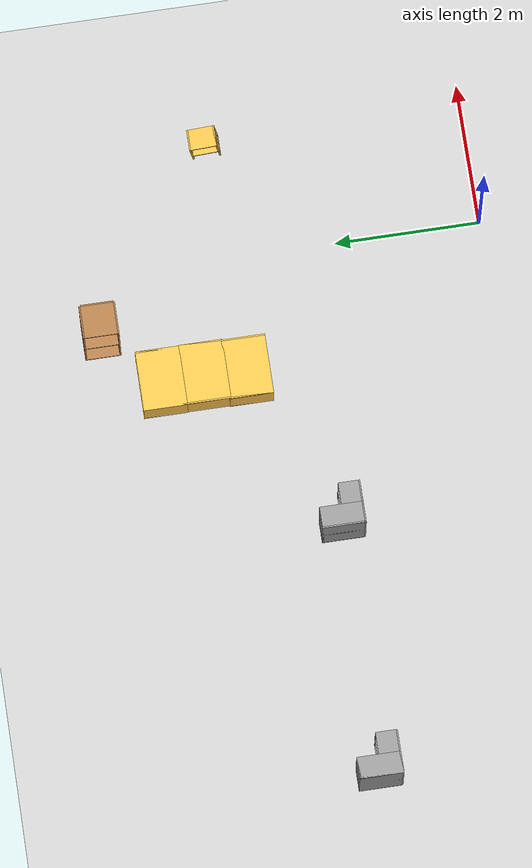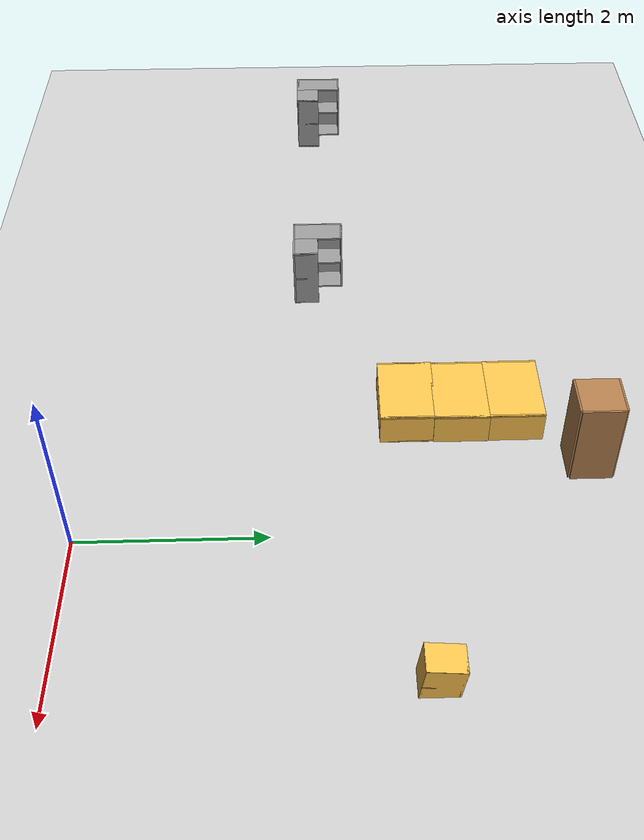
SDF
<sdf version="1.7">
 <world name="default">
  <model name="ground_plane">
   <static>1</static>
   <link name="link">
    <collision name="collision">
     <geometry><plane><normal>0 0 1</normal><size>100 100</size></plane></geometry>
     <surface><friction><ode><mu>100</mu><mu2>50</mu2></ode></friction></surface>
    </collision>
    <visual name="visual">
     <cast_shadows>0</cast_shadows>
     <geometry><plane><normal>0 0 1</normal><size>100 100</size></plane></geometry>
     <material>
      <script><uri>file://media/materials/scripts/gazebo.material</uri><name>Gazebo/Grey</name></script>
     </material>
    </visual>
   </link>
  </model>
  <model name="Wall_Cabinet_15x30">
   <pose>1.64527 3.73877 0 1.45279 -0 0</pose>
   <link name="Wall_0">
    <pose>0 0.374 0.192 0 -0 0</pose>
    <inertial>
     <mass>0.9882</mass>
     <inertia><ixx>0.0072</ixx><iyy>0.0194</iyy><izz>0.0122</izz><ixy>0</ixy><ixz>0</ixz><iyz>0</iyz></inertia>
    </inertial>
    <collision name="Wall_0_Collision"><geometry><box><size>0.296 0.02 0.384</size></box></geometry></collision>
    <visual name="Wall_0_Visual">
     <geometry><box><size>0.296 0.02 0.384</size></box></geometry>
     <material>
      <script><uri>file://media/materials/scripts/gazebo.material</uri><name>Gazebo/Grey</name></script>
      <ambient>1 0.764706 0.305882 1</ambient>
     </material>
    </visual>
   </link>
   <joint name="0_2" type="fixed">
    <pose>0 0 0.192 0 -0 0</pose>
    <parent>Wall_2</parent>
    <child>Wall_0</child>
    <axis><xyz>0 0 1</xyz><limit><lower>-1e+16</lower><upper>1e+16</upper></limit></axis>
   </joint>
   <joint name="0_4" type="fixed">
    <pose>0 0 -0.192 0 -0 0</pose>
    <parent>Wall_4</parent>
    <child>Wall_0</child>
    <axis><xyz>0 0 1</xyz><limit><lower>-1e+16</lower><upper>1e+16</upper></limit></axis>
   </joint>
   <joint name="0_15" type="fixed">
    <pose>0.148 0 0 0 -0 0</pose>
    <parent>Wall_15</parent>
    <child>Wall_0</child>
    <axis><xyz>1 0 0</xyz><limit><lower>-1e+16</lower><upper>1e+16</upper></limit></axis>
   </joint>
   <link name="Wall_11">
    <pose>0 -0.132768 0.192 0 -0 0</pose>
    <inertial>
     <mass>0.9882</mass>
     <inertia><ixx>0.0072</ixx><iyy>0.0194</iyy><izz>0.0122</izz><ixy>0</ixy><ixz>0</ixz><iyz>0</iyz></inertia>
    </inertial>
    <collision name="Wall_11_Collision"><geometry><box><size>0.296 0.02 0.384</size></box></geometry></collision>
    <visual name="Wall_11_Visual">
     <geometry><box><size>0.296 0.02 0.384</size></box></geometry>
     <material>
      <script><uri>file://media/materials/scripts/gazebo.material</uri><name>Gazebo/Grey</name></script>
      <ambient>1 0.764706 0.305882 1</ambient>
     </material>
    </visual>
   </link>
   <joint name="11_2" type="fixed">
    <pose>0 0 0.192 0 -0 0</pose>
    <parent>Wall_2</parent>
    <child>Wall_11</child>
    <axis><xyz>0 0 1</xyz><limit><lower>-1e+16</lower><upper>1e+16</upper></limit></axis>
   </joint>
   <joint name="11_4" type="fixed">
    <pose>0 0 -0.192 0 -0 0</pose>
    <parent>Wall_4</parent>
    <child>Wall_11</child>
    <axis><xyz>0 0 1</xyz><limit><lower>-1e+16</lower><upper>1e+16</upper></limit></axis>
   </joint>
   <joint name="11_15" type="fixed">
    <pose>0.148 0 0 0 -0 0</pose>
    <parent>Wall_15</parent>
    <child>Wall_11</child>
    <axis><xyz>1 0 0</xyz><limit><lower>-1e+16</lower><upper>1e+16</upper></limit></axis>
   </joint>
   <link name="Wall_15">
    <pose>0.138 0 0.19 0 -0 0</pose>
    <inertial>
     <mass>2.5241</mass>
     <inertia><ixx>0.0305</ixx><iyy>0.1229</iyy><izz>0.1532</izz><ixy>0</ixy><ixz>0</ixz><iyz>0</iyz></inertia>
    </inertial>
    <collision name="Wall_15_Collision"><geometry><box><size>0.02 0.764 0.38</size></box></geometry></collision>
    <visual name="Wall_15_Visual">
     <geometry><box><size>0.02 0.764 0.38</size></box></geometry>
     <material>
      <script><uri>file://media/materials/scripts/gazebo.material</uri><name>Gazebo/Grey</name></script>
      <ambient>1 0.764706 0.305882 1</ambient>
     </material>
    </visual>
   </link>
   <joint name="15_2" type="fixed">
    <pose>0 0 0.19 0 -0 0</pose>
    <parent>Wall_2</parent>
    <child>Wall_15</child>
    <axis><xyz>0 0 1</xyz><limit><lower>-1e+16</lower><upper>1e+16</upper></limit></axis>
   </joint>
   <joint name="15_4" type="fixed">
    <pose>0 0 -0.19 0 -0 0</pose>
    <parent>Wall_4</parent>
    <child>Wall_15</child>
    <axis><xyz>0 0 1</xyz><limit><lower>-1e+16</lower><upper>1e+16</upper></limit></axis>
   </joint>
   <link name="Wall_2">
    <pose>0 0 0.374 0 -0 0</pose>
    <inertial>
     <mass>1.9765</mass>
     <inertia><ixx>0.0145</ixx><iyy>0.1116</iyy><izz>0.0972</izz><ixy>0</ixy><ixz>0</ixz><iyz>0</iyz></inertia>
    </inertial>
    <collision name="Wall_2_Collision"><geometry><box><size>0.296 0.768 0.02</size></box></geometry></collision>
    <visual name="Wall_2_Visual">
     <geometry><box><size>0.296 0.768 0.02</size></box></geometry>
     <material>
      <script><uri>file://media/materials/scripts/gazebo.material</uri><name>Gazebo/Grey</name></script>
      <ambient>1 0.764706 0.305882 1</ambient>
     </material>
    </visual>
   </link>
   <link name="Wall_4">
    <pose>0 0 0.01 0 -0 0</pose>
    <inertial>
     <mass>1.9765</mass>
     <inertia><ixx>0.0145</ixx><iyy>0.1116</iyy><izz>0.0972</izz><ixy>0</ixy><ixz>0</ixz><iyz>0</iyz></inertia>
    </inertial>
    <collision name="Wall_4_Collision"><geometry><box><size>0.296 0.768 0.02</size></box></geometry></collision>
    <visual name="Wall_4_Visual">
     <geometry><box><size>0.296 0.768 0.02</size></box></geometry>
     <material>
      <script><uri>file://media/materials/scripts/gazebo.material</uri><name>Gazebo/Grey</name></script>
      <ambient>1 0.764706 0.305882 1</ambient>
     </material>
    </visual>
    <pose>-0.181124 0 0 0 0 -1.5708</pose>
   </link>
   <link name="Wall_6">
    <pose>0 -0.374 0.192 0 -0 0</pose>
    <inertial>
     <mass>0.9882</mass>
     <inertia><ixx>0.0072</ixx><iyy>0.0194</iyy><izz>0.0122</izz><ixy>0</ixy><ixz>0</ixz><iyz>0</iyz></inertia>
    </inertial>
    <collision name="Wall_6_Collision"><geometry><box><size>0.296 0.02 0.384</size></box></geometry></collision>
    <visual name="Wall_6_Visual">
     <geometry><box><size>0.296 0.02 0.384</size></box></geometry>
     <material>
      <script><uri>file://media/materials/scripts/gazebo.material</uri><name>Gazebo/Grey</name></script>
      <ambient>1 0.764706 0.305882 1</ambient>
     </material>
    </visual>
   </link>
   <joint name="6_2" type="fixed">
    <pose>0 0 0.192 0 -0 0</pose>
    <parent>Wall_2</parent>
    <child>Wall_6</child>
    <axis><xyz>0 0 1</xyz><limit><lower>-1e+16</lower><upper>1e+16</upper></limit></axis>
   </joint>
   <joint name="6_4" type="fixed">
    <pose>0 0 -0.192 0 -0 0</pose>
    <parent>Wall_4</parent>
    <child>Wall_6</child>
    <axis><xyz>0 0 1</xyz><limit><lower>-1e+16</lower><upper>1e+16</upper></limit></axis>
   </joint>
   <joint name="6_15" type="fixed">
    <pose>0.148 0 0 0 -0 0</pose>
    <parent>Wall_15</parent>
    <child>Wall_6</child>
    <axis><xyz>1 0 0</xyz><limit><lower>-1e+16</lower><upper>1e+16</upper></limit></axis>
   </joint>
   <link name="Wall_8">
    <pose>0 0.120833 0.192 0 -0 0</pose>
    <inertial>
     <mass>0.9882</mass>
     <inertia><ixx>0.0072</ixx><iyy>0.0194</iyy><izz>0.0122</izz><ixy>0</ixy><ixz>0</ixz><iyz>0</iyz></inertia>
    </inertial>
    <collision name="Wall_8_Collision"><geometry><box><size>0.296 0.02 0.384</size></box></geometry></collision>
    <visual name="Wall_8_Visual">
     <geometry><box><size>0.296 0.02 0.384</size></box></geometry>
     <material>
      <script><uri>file://media/materials/scripts/gazebo.material</uri><name>Gazebo/Grey</name></script>
      <ambient>1 0.764706 0.305882 1</ambient>
     </material>
    </visual>
   </link>
   <joint name="8_2" type="fixed">
    <pose>0 0 0.192 0 -0 0</pose>
    <parent>Wall_2</parent>
    <child>Wall_8</child>
    <axis><xyz>0 0 1</xyz><limit><lower>-1e+16</lower><upper>1e+16</upper></limit></axis>
   </joint>
   <joint name="8_4" type="fixed">
    <pose>0 0 -0.192 0 -0 0</pose>
    <parent>Wall_4</parent>
    <child>Wall_8</child>
    <axis><xyz>0 0 1</xyz><limit><lower>-1e+16</lower><upper>1e+16</upper></limit></axis>
   </joint>
   <joint name="8_15" type="fixed">
    <pose>0.148 0 0 0 -0 0</pose>
    <parent>Wall_15</parent>
    <child>Wall_8</child>
    <axis><xyz>1 0 0</xyz><limit><lower>-1e+16</lower><upper>1e+16</upper></limit></axis>
   </joint>
   <static>1</static>
  </model>
  <model name="Wall_Cabinet_Coin_24x30W">
   <link name="Wall_10">
    <pose>0.286 -0.148 0.384 0 -0 0</pose>
    <inertial>
     <mass>2.1259</mass>
     <inertia><ixx>0.0158</ixx><iyy>0.1202</iyy><izz>0.1046</izz><ixy>0</ixy><ixz>0</ixz><iyz>0</iyz></inertia>
    </inertial>
    <collision name="Wall_10_Collision"><geometry><box><size>0.02 0.296 0.768</size></box></geometry></collision>
    <visual name="Wall_10_Visual">
     <geometry><box><size>0.02 0.296 0.768</size></box></geometry>
     <material>
      <script><uri>file://media/materials/scripts/gazebo.material</uri><name>Gazebo/Grey</name></script>
      <ambient>1 1 1 1</ambient>
     </material>
    </visual>
   </link>
   <joint name="10_16" type="fixed">
    <pose>0 0 -0.374 0 -0 0</pose>
    <parent>Wall_16</parent>
    <child>Wall_10</child>
    <axis><xyz>1 0 0</xyz><limit><lower>-1e+16</lower><upper>1e+16</upper></limit></axis>
   </joint>
   <joint name="10_14" type="fixed">
    <parent>Wall_14</parent>
    <child>Wall_10</child>
    <axis><xyz>1 0 0</xyz><limit><lower>-1e+16</lower><upper>1e+16</upper></limit></axis>
   </joint>
   <joint name="10_12" type="fixed">
    <pose>0 0 0.374 0 -0 0</pose>
    <parent>Wall_12</parent>
    <child>Wall_10</child>
    <axis><xyz>1 0 0</xyz><limit><lower>-1e+16</lower><upper>1e+16</upper></limit></axis>
   </joint>
   <joint name="10_29" type="fixed">
    <pose>0 -0.148 0 0 -0 0</pose>
    <parent>Wall_29</parent>
    <child>Wall_10</child>
    <axis><xyz>1 0 0</xyz><limit><lower>-1e+16</lower><upper>1e+16</upper></limit></axis>
   </joint>
   <link name="Wall_12">
    <pose>0.148 -0.148 0.758 0 -0 0</pose>
    <inertial>
     <mass>0.8802</mass>
     <inertia><ixx>0.0065</ixx><iyy>0.0139</iyy><izz>0.0074</izz><ixy>0</ixy><ixz>0</ixz><iyz>0</iyz></inertia>
    </inertial>
    <collision name="Wall_12_Collision"><geometry><box><size>0.296 0.296 0.02</size></box></geometry></collision>
    <visual name="Wall_12_Visual">
     <geometry><box><size>0.296 0.296 0.02</size></box></geometry>
     <material>
      <script><uri>file://media/materials/scripts/gazebo.material</uri><name>Gazebo/Grey</name></script>
      <ambient>1 1 1 1</ambient>
     </material>
    </visual>
   </link>
   <joint name="12_29" type="fixed">
    <pose>0 -0.148 0 0 -0 0</pose>
    <parent>Wall_29</parent>
    <child>Wall_12</child>
    <axis><xyz>0 0 1</xyz><limit><lower>-1e+16</lower><upper>1e+16</upper></limit></axis>
   </joint>
   <link name="Wall_14">
    <pose>0.148 -0.148 0.384 0 -0 0</pose>
    <inertial>
     <mass>0.8802</mass>
     <inertia><ixx>0.0065</ixx><iyy>0.0139</iyy><izz>0.0074</izz><ixy>0</ixy><ixz>0</ixz><iyz>0</iyz></inertia>
    </inertial>
    <collision name="Wall_14_Collision"><geometry><box><size>0.296 0.296 0.02</size></box></geometry></collision>
    <visual name="Wall_14_Visual">
     <geometry><box><size>0.296 0.296 0.02</size></box></geometry>
     <material>
      <script><uri>file://media/materials/scripts/gazebo.material</uri><name>Gazebo/Grey</name></script>
      <ambient>1 1 1 1</ambient>
     </material>
    </visual>
   </link>
   <joint name="14_29" type="fixed">
    <pose>0 -0.148 0 0 -0 0</pose>
    <parent>Wall_29</parent>
    <child>Wall_14</child>
    <axis><xyz>0 1 0</xyz><limit><lower>-1e+16</lower><upper>1e+16</upper></limit></axis>
   </joint>
   <link name="Wall_16">
    <pose>0.148 -0.148 0.01 0 -0 0</pose>
    <inertial>
     <mass>0.8802</mass>
     <inertia><ixx>0.0065</ixx><iyy>0.0139</iyy><izz>0.0074</izz><ixy>0</ixy><ixz>0</ixz><iyz>0</iyz></inertia>
    </inertial>
    <collision name="Wall_16_Collision"><geometry><box><size>0.296 0.296 0.02</size></box></geometry></collision>
    <visual name="Wall_16_Visual">
     <geometry><box><size>0.296 0.296 0.02</size></box></geometry>
     <material>
      <script><uri>file://media/materials/scripts/gazebo.material</uri><name>Gazebo/Grey</name></script>
      <ambient>1 1 1 1</ambient>
     </material>
    </visual>
   </link>
   <joint name="16_29" type="fixed">
    <pose>0 -0.148 0 0 -0 0</pose>
    <parent>Wall_29</parent>
    <child>Wall_16</child>
    <axis><xyz>0 1 0</xyz><limit><lower>-1e+16</lower><upper>1e+16</upper></limit></axis>
   </joint>
   <link name="Wall_18">
    <pose>-0.148 0 0.01 0 -0 0</pose>
    <inertial>
     <mass>1.6525</mass>
     <inertia><ixx>0.0491</ixx><iyy>0.0613</iyy><izz>0.0123</izz><ixy>0</ixy><ixz>0</ixz><iyz>0</iyz></inertia>
    </inertial>
    <collision name="Wall_18_Collision"><geometry><box><size>0.296 0.592 0.02</size></box></geometry></collision>
    <visual name="Wall_18_Visual">
     <geometry><box><size>0.296 0.592 0.02</size></box></geometry>
     <material>
      <script><uri>file://media/materials/scripts/gazebo.material</uri><name>Gazebo/Grey</name></script>
      <ambient>1 1 1 1</ambient>
     </material>
    </visual>
   </link>
   <joint name="18_16" type="fixed">
    <pose>0.148 -0.148 0 0 -0 0</pose>
    <parent>Wall_16</parent>
    <child>Wall_18</child>
    <axis><xyz>1 0 0</xyz><limit><lower>-1e+16</lower><upper>1e+16</upper></limit></axis>
   </joint>
   <joint name="18_29" type="fixed">
    <pose>0 -0.296 0 0 -0 0</pose>
    <parent>Wall_29</parent>
    <child>Wall_18</child>
    <axis><xyz>0 1 0</xyz><limit><lower>-1e+16</lower><upper>1e+16</upper></limit></axis>
   </joint>
   <joint name="18_27" type="fixed">
    <pose>-0.148 0 0 0 -0 0</pose>
    <parent>Wall_27</parent>
    <child>Wall_18</child>
    <axis><xyz>1 0 0</xyz><limit><lower>-1e+16</lower><upper>1e+16</upper></limit></axis>
   </joint>
   <joint name="18_30" type="fixed">
    <pose>0 0.296 0 0 -0 0</pose>
    <parent>Wall_30</parent>
    <child>Wall_18</child>
    <axis><xyz>0 1 0</xyz><limit><lower>-1e+16</lower><upper>1e+16</upper></limit></axis>
   </joint>
   <link name="Wall_20">
    <pose>-0.148 0 0.384 0 -0 0</pose>
    <inertial>
     <mass>1.6525</mass>
     <inertia><ixx>0.0491</ixx><iyy>0.0613</iyy><izz>0.0123</izz><ixy>0</ixy><ixz>0</ixz><iyz>0</iyz></inertia>
    </inertial>
    <collision name="Wall_20_Collision"><geometry><box><size>0.296 0.592 0.02</size></box></geometry></collision>
    <visual name="Wall_20_Visual">
     <geometry><box><size>0.296 0.592 0.02</size></box></geometry>
     <material>
      <script><uri>file://media/materials/scripts/gazebo.material</uri><name>Gazebo/Grey</name></script>
      <ambient>1 1 1 1</ambient>
     </material>
    </visual>
   </link>
   <joint name="20_14" type="fixed">
    <pose>0.148 -0.148 0 0 -0 0</pose>
    <parent>Wall_14</parent>
    <child>Wall_20</child>
    <axis><xyz>1 0 0</xyz><limit><lower>-1e+16</lower><upper>1e+16</upper></limit></axis>
   </joint>
   <joint name="20_29" type="fixed">
    <pose>0 -0.296 0 0 -0 0</pose>
    <parent>Wall_29</parent>
    <child>Wall_20</child>
    <axis><xyz>0 1 0</xyz><limit><lower>-1e+16</lower><upper>1e+16</upper></limit></axis>
   </joint>
   <joint name="20_27" type="fixed">
    <pose>-0.148 0 0 0 -0 0</pose>
    <parent>Wall_27</parent>
    <child>Wall_20</child>
    <axis><xyz>1 0 0</xyz><limit><lower>-1e+16</lower><upper>1e+16</upper></limit></axis>
   </joint>
   <joint name="20_30" type="fixed">
    <pose>0 0.296 0 0 -0 0</pose>
    <parent>Wall_30</parent>
    <child>Wall_20</child>
    <axis><xyz>0 1 0</xyz><limit><lower>-1e+16</lower><upper>1e+16</upper></limit></axis>
   </joint>
   <link name="Wall_22">
    <pose>-0.148 0 0.758 0 -0 0</pose>
    <inertial>
     <mass>1.6525</mass>
     <inertia><ixx>0.0491</ixx><iyy>0.0613</iyy><izz>0.0123</izz><ixy>0</ixy><ixz>0</ixz><iyz>0</iyz></inertia>
    </inertial>
    <collision name="Wall_22_Collision"><geometry><box><size>0.296 0.592 0.02</size></box></geometry></collision>
    <visual name="Wall_22_Visual">
     <geometry><box><size>0.296 0.592 0.02</size></box></geometry>
     <material>
      <script><uri>file://media/materials/scripts/gazebo.material</uri><name>Gazebo/Grey</name></script>
      <ambient>1 1 1 1</ambient>
     </material>
    </visual>
   </link>
   <joint name="22_12" type="fixed">
    <pose>0.148 -0.148 0 0 -0 0</pose>
    <parent>Wall_12</parent>
    <child>Wall_22</child>
    <axis><xyz>1 0 0</xyz><limit><lower>-1e+16</lower><upper>1e+16</upper></limit></axis>
   </joint>
   <joint name="22_29" type="fixed">
    <pose>0 -0.296 0 0 -0 0</pose>
    <parent>Wall_29</parent>
    <child>Wall_22</child>
    <axis><xyz>0 1 0</xyz><limit><lower>-1e+16</lower><upper>1e+16</upper></limit></axis>
   </joint>
   <joint name="22_27" type="fixed">
    <pose>-0.148 0 0 0 -0 0</pose>
    <parent>Wall_27</parent>
    <child>Wall_22</child>
    <axis><xyz>1 0 0</xyz><limit><lower>-1e+16</lower><upper>1e+16</upper></limit></axis>
   </joint>
   <joint name="22_30" type="fixed">
    <pose>0 0.296 0 0 -0 0</pose>
    <parent>Wall_30</parent>
    <child>Wall_22</child>
    <axis><xyz>0 1 0</xyz><limit><lower>-1e+16</lower><upper>1e+16</upper></limit></axis>
   </joint>
   <link name="Wall_27">
    <pose>-0.286 0 0.384 0 -0 0</pose>
    <inertial>
     <mass>4.2589</mass>
     <inertia><ixx>0.1266</ixx><iyy>0.3358</iyy><izz>0.2095</izz><ixy>0</ixy><ixz>0</ixz><iyz>0</iyz></inertia>
    </inertial>
    <collision name="Wall_27_Collision"><geometry><box><size>0.02 0.592 0.768</size></box></geometry></collision>
    <visual name="Wall_27_Visual">
     <geometry><box><size>0.02 0.592 0.768</size></box></geometry>
     <material>
      <script><uri>file://media/materials/scripts/gazebo.material</uri><name>Gazebo/Grey</name></script>
      <ambient>1 1 1 1</ambient>
     </material>
    </visual>
   </link>
   <joint name="27_30" type="fixed">
    <pose>0 0.296 0 0 -0 0</pose>
    <parent>Wall_30</parent>
    <child>Wall_27</child>
    <axis><xyz>0 1 0</xyz><limit><lower>-1e+16</lower><upper>1e+16</upper></limit></axis>
   </joint>
   <link name="Wall_29">
    <pose>0 -0.286 0.384 0 -0 0</pose>
    <inertial>
     <mass>4.3176</mass>
     <inertia><ixx>0.134</ixx><iyy>0.2091</iyy><izz>0.3428</izz><ixy>0</ixy><ixz>0</ixz><iyz>0</iyz></inertia>
    </inertial>
    <collision name="Wall_29_Collision"><geometry><box><size>0.592 0.02 0.768</size></box></geometry></collision>
    <visual name="Wall_29_Visual">
     <geometry><box><size>0.592 0.02 0.768</size></box></geometry>
     <material>
      <script><uri>file://media/materials/scripts/gazebo.material</uri><name>Gazebo/Grey</name></script>
      <ambient>1 1 1 1</ambient>
     </material>
    </visual>
   </link>
   <link name="Wall_30">
    <pose>-0.148 0.286 0.384 0 -0 0</pose>
    <inertial>
     <mass>2.1093</mass>
     <inertia><ixx>0.1021</ixx><iyy>0.0157</iyy><izz>0.1177</izz><ixy>0</ixy><ixz>0</ixz><iyz>0</iyz></inertia>
    </inertial>
    <collision name="Wall_30_Collision"><geometry><box><size>0.296 0.02 0.768</size></box></geometry></collision>
    <visual name="Wall_30_Visual">
     <geometry><box><size>0.296 0.02 0.768</size></box></geometry>
     <material>
      <script><uri>file://media/materials/scripts/gazebo.material</uri><name>Gazebo/Grey</name></script>
      <ambient>1 1 1 1</ambient>
     </material>
    </visual>
   </link>
   <static>1</static>
   <pose>-3.86335 2.51029 0 0 -0 0</pose>
  </model>
  <model name="Wall_Cabinet_Coin_24x30W_clone">
   <link name="Wall_10">
    <pose>0.286 -0.148 0.384 0 -0 0</pose>
    <inertial>
     <mass>2.1259</mass>
     <inertia><ixx>0.0158</ixx><iyy>0.1202</iyy><izz>0.1046</izz><ixy>0</ixy><ixz>0</ixz><iyz>0</iyz></inertia>
    </inertial>
    <collision name="Wall_10_Collision"><geometry><box><size>0.02 0.296 0.768</size></box></geometry></collision>
    <visual name="Wall_10_Visual">
     <geometry><box><size>0.02 0.296 0.768</size></box></geometry>
     <material>
      <script><uri>file://media/materials/scripts/gazebo.material</uri><name>Gazebo/Grey</name></script>
      <ambient>1 1 1 1</ambient>
     </material>
    </visual>
   </link>
   <joint name="10_16" type="fixed">
    <pose>0 0 -0.374 0 -0 0</pose>
    <parent>Wall_16</parent>
    <child>Wall_10</child>
    <axis><xyz>1 0 0</xyz><limit><lower>-1e+16</lower><upper>1e+16</upper></limit></axis>
   </joint>
   <joint name="10_14" type="fixed">
    <parent>Wall_14</parent>
    <child>Wall_10</child>
    <axis><xyz>1 0 0</xyz><limit><lower>-1e+16</lower><upper>1e+16</upper></limit></axis>
   </joint>
   <joint name="10_12" type="fixed">
    <pose>0 0 0.374 0 -0 0</pose>
    <parent>Wall_12</parent>
    <child>Wall_10</child>
    <axis><xyz>1 0 0</xyz><limit><lower>-1e+16</lower><upper>1e+16</upper></limit></axis>
   </joint>
   <joint name="10_29" type="fixed">
    <pose>0 -0.148 0 0 -0 0</pose>
    <parent>Wall_29</parent>
    <child>Wall_10</child>
    <axis><xyz>1 0 0</xyz><limit><lower>-1e+16</lower><upper>1e+16</upper></limit></axis>
   </joint>
   <link name="Wall_12">
    <pose>0.148 -0.148 0.758 0 -0 0</pose>
    <inertial>
     <mass>0.8802</mass>
     <inertia><ixx>0.0065</ixx><iyy>0.0139</iyy><izz>0.0074</izz><ixy>0</ixy><ixz>0</ixz><iyz>0</iyz></inertia>
    </inertial>
    <collision name="Wall_12_Collision"><geometry><box><size>0.296 0.296 0.02</size></box></geometry></collision>
    <visual name="Wall_12_Visual">
     <geometry><box><size>0.296 0.296 0.02</size></box></geometry>
     <material>
      <script><uri>file://media/materials/scripts/gazebo.material</uri><name>Gazebo/Grey</name></script>
      <ambient>1 1 1 1</ambient>
     </material>
    </visual>
   </link>
   <joint name="12_29" type="fixed">
    <pose>0 -0.148 0 0 -0 0</pose>
    <parent>Wall_29</parent>
    <child>Wall_12</child>
    <axis><xyz>0 0 1</xyz><limit><lower>-1e+16</lower><upper>1e+16</upper></limit></axis>
   </joint>
   <link name="Wall_14">
    <pose>0.148 -0.148 0.384 0 -0 0</pose>
    <inertial>
     <mass>0.8802</mass>
     <inertia><ixx>0.0065</ixx><iyy>0.0139</iyy><izz>0.0074</izz><ixy>0</ixy><ixz>0</ixz><iyz>0</iyz></inertia>
    </inertial>
    <collision name="Wall_14_Collision"><geometry><box><size>0.296 0.296 0.02</size></box></geometry></collision>
    <visual name="Wall_14_Visual">
     <geometry><box><size>0.296 0.296 0.02</size></box></geometry>
     <material>
      <script><uri>file://media/materials/scripts/gazebo.material</uri><name>Gazebo/Grey</name></script>
      <ambient>1 1 1 1</ambient>
     </material>
    </visual>
   </link>
   <joint name="14_29" type="fixed">
    <pose>0 -0.148 0 0 -0 0</pose>
    <parent>Wall_29</parent>
    <child>Wall_14</child>
    <axis><xyz>0 1 0</xyz><limit><lower>-1e+16</lower><upper>1e+16</upper></limit></axis>
   </joint>
   <link name="Wall_16">
    <pose>0.148 -0.148 0.01 0 -0 0</pose>
    <inertial>
     <mass>0.8802</mass>
     <inertia><ixx>0.0065</ixx><iyy>0.0139</iyy><izz>0.0074</izz><ixy>0</ixy><ixz>0</ixz><iyz>0</iyz></inertia>
    </inertial>
    <collision name="Wall_16_Collision"><geometry><box><size>0.296 0.296 0.02</size></box></geometry></collision>
    <visual name="Wall_16_Visual">
     <geometry><box><size>0.296 0.296 0.02</size></box></geometry>
     <material>
      <script><uri>file://media/materials/scripts/gazebo.material</uri><name>Gazebo/Grey</name></script>
      <ambient>1 1 1 1</ambient>
     </material>
    </visual>
   </link>
   <joint name="16_29" type="fixed">
    <pose>0 -0.148 0 0 -0 0</pose>
    <parent>Wall_29</parent>
    <child>Wall_16</child>
    <axis><xyz>0 1 0</xyz><limit><lower>-1e+16</lower><upper>1e+16</upper></limit></axis>
   </joint>
   <link name="Wall_18">
    <pose>-0.148 0 0.01 0 -0 0</pose>
    <inertial>
     <mass>1.6525</mass>
     <inertia><ixx>0.0491</ixx><iyy>0.0613</iyy><izz>0.0123</izz><ixy>0</ixy><ixz>0</ixz><iyz>0</iyz></inertia>
    </inertial>
    <collision name="Wall_18_Collision"><geometry><box><size>0.296 0.592 0.02</size></box></geometry></collision>
    <visual name="Wall_18_Visual">
     <geometry><box><size>0.296 0.592 0.02</size></box></geometry>
     <material>
      <script><uri>file://media/materials/scripts/gazebo.material</uri><name>Gazebo/Grey</name></script>
      <ambient>1 1 1 1</ambient>
     </material>
    </visual>
   </link>
   <joint name="18_16" type="fixed">
    <pose>0.148 -0.148 0 0 -0 0</pose>
    <parent>Wall_16</parent>
    <child>Wall_18</child>
    <axis><xyz>1 0 0</xyz><limit><lower>-1e+16</lower><upper>1e+16</upper></limit></axis>
   </joint>
   <joint name="18_29" type="fixed">
    <pose>0 -0.296 0 0 -0 0</pose>
    <parent>Wall_29</parent>
    <child>Wall_18</child>
    <axis><xyz>0 1 0</xyz><limit><lower>-1e+16</lower><upper>1e+16</upper></limit></axis>
   </joint>
   <joint name="18_27" type="fixed">
    <pose>-0.148 0 0 0 -0 0</pose>
    <parent>Wall_27</parent>
    <child>Wall_18</child>
    <axis><xyz>1 0 0</xyz><limit><lower>-1e+16</lower><upper>1e+16</upper></limit></axis>
   </joint>
   <joint name="18_30" type="fixed">
    <pose>0 0.296 0 0 -0 0</pose>
    <parent>Wall_30</parent>
    <child>Wall_18</child>
    <axis><xyz>0 1 0</xyz><limit><lower>-1e+16</lower><upper>1e+16</upper></limit></axis>
   </joint>
   <link name="Wall_20">
    <pose>-0.148 0 0.384 0 -0 0</pose>
    <inertial>
     <mass>1.6525</mass>
     <inertia><ixx>0.0491</ixx><iyy>0.0613</iyy><izz>0.0123</izz><ixy>0</ixy><ixz>0</ixz><iyz>0</iyz></inertia>
    </inertial>
    <collision name="Wall_20_Collision"><geometry><box><size>0.296 0.592 0.02</size></box></geometry></collision>
    <visual name="Wall_20_Visual">
     <geometry><box><size>0.296 0.592 0.02</size></box></geometry>
     <material>
      <script><uri>file://media/materials/scripts/gazebo.material</uri><name>Gazebo/Grey</name></script>
      <ambient>1 1 1 1</ambient>
     </material>
    </visual>
   </link>
   <joint name="20_14" type="fixed">
    <pose>0.148 -0.148 0 0 -0 0</pose>
    <parent>Wall_14</parent>
    <child>Wall_20</child>
    <axis><xyz>1 0 0</xyz><limit><lower>-1e+16</lower><upper>1e+16</upper></limit></axis>
   </joint>
   <joint name="20_29" type="fixed">
    <pose>0 -0.296 0 0 -0 0</pose>
    <parent>Wall_29</parent>
    <child>Wall_20</child>
    <axis><xyz>0 1 0</xyz><limit><lower>-1e+16</lower><upper>1e+16</upper></limit></axis>
   </joint>
   <joint name="20_27" type="fixed">
    <pose>-0.148 0 0 0 -0 0</pose>
    <parent>Wall_27</parent>
    <child>Wall_20</child>
    <axis><xyz>1 0 0</xyz><limit><lower>-1e+16</lower><upper>1e+16</upper></limit></axis>
   </joint>
   <joint name="20_30" type="fixed">
    <pose>0 0.296 0 0 -0 0</pose>
    <parent>Wall_30</parent>
    <child>Wall_20</child>
    <axis><xyz>0 1 0</xyz><limit><lower>-1e+16</lower><upper>1e+16</upper></limit></axis>
   </joint>
   <link name="Wall_22">
    <pose>-0.148 0 0.758 0 -0 0</pose>
    <inertial>
     <mass>1.6525</mass>
     <inertia><ixx>0.0491</ixx><iyy>0.0613</iyy><izz>0.0123</izz><ixy>0</ixy><ixz>0</ixz><iyz>0</iyz></inertia>
    </inertial>
    <collision name="Wall_22_Collision"><geometry><box><size>0.296 0.592 0.02</size></box></geometry></collision>
    <visual name="Wall_22_Visual">
     <geometry><box><size>0.296 0.592 0.02</size></box></geometry>
     <material>
      <script><uri>file://media/materials/scripts/gazebo.material</uri><name>Gazebo/Grey</name></script>
      <ambient>1 1 1 1</ambient>
     </material>
    </visual>
   </link>
   <joint name="22_12" type="fixed">
    <pose>0.148 -0.148 0 0 -0 0</pose>
    <parent>Wall_12</parent>
    <child>Wall_22</child>
    <axis><xyz>1 0 0</xyz><limit><lower>-1e+16</lower><upper>1e+16</upper></limit></axis>
   </joint>
   <joint name="22_29" type="fixed">
    <pose>0 -0.296 0 0 -0 0</pose>
    <parent>Wall_29</parent>
    <child>Wall_22</child>
    <axis><xyz>0 1 0</xyz><limit><lower>-1e+16</lower><upper>1e+16</upper></limit></axis>
   </joint>
   <joint name="22_27" type="fixed">
    <pose>-0.148 0 0 0 -0 0</pose>
    <parent>Wall_27</parent>
    <child>Wall_22</child>
    <axis><xyz>1 0 0</xyz><limit><lower>-1e+16</lower><upper>1e+16</upper></limit></axis>
   </joint>
   <joint name="22_30" type="fixed">
    <pose>0 0.296 0 0 -0 0</pose>
    <parent>Wall_30</parent>
    <child>Wall_22</child>
    <axis><xyz>0 1 0</xyz><limit><lower>-1e+16</lower><upper>1e+16</upper></limit></axis>
   </joint>
   <link name="Wall_27">
    <pose>-0.286 0 0.384 0 -0 0</pose>
    <inertial>
     <mass>4.2589</mass>
     <inertia><ixx>0.1266</ixx><iyy>0.3358</iyy><izz>0.2095</izz><ixy>0</ixy><ixz>0</ixz><iyz>0</iyz></inertia>
    </inertial>
    <collision name="Wall_27_Collision"><geometry><box><size>0.02 0.592 0.768</size></box></geometry></collision>
    <visual name="Wall_27_Visual">
     <geometry><box><size>0.02 0.592 0.768</size></box></geometry>
     <material>
      <script><uri>file://media/materials/scripts/gazebo.material</uri><name>Gazebo/Grey</name></script>
      <ambient>1 1 1 1</ambient>
     </material>
    </visual>
   </link>
   <joint name="27_30" type="fixed">
    <pose>0 0.296 0 0 -0 0</pose>
    <parent>Wall_30</parent>
    <child>Wall_27</child>
    <axis><xyz>0 1 0</xyz><limit><lower>-1e+16</lower><upper>1e+16</upper></limit></axis>
   </joint>
   <link name="Wall_29">
    <pose>0 -0.286 0.384 0 -0 0</pose>
    <inertial>
     <mass>4.3176</mass>
     <inertia><ixx>0.134</ixx><iyy>0.2091</iyy><izz>0.3428</izz><ixy>0</ixy><ixz>0</ixz><iyz>0</iyz></inertia>
    </inertial>
    <collision name="Wall_29_Collision"><geometry><box><size>0.592 0.02 0.768</size></box></geometry></collision>
    <visual name="Wall_29_Visual">
     <geometry><box><size>0.592 0.02 0.768</size></box></geometry>
     <material>
      <script><uri>file://media/materials/scripts/gazebo.material</uri><name>Gazebo/Grey</name></script>
      <ambient>1 1 1 1</ambient>
     </material>
    </visual>
   </link>
   <link name="Wall_30">
    <pose>-0.148 0.286 0.384 0 -0 0</pose>
    <inertial>
     <mass>2.1093</mass>
     <inertia><ixx>0.1021</ixx><iyy>0.0157</iyy><izz>0.1177</izz><ixy>0</ixy><ixz>0</ixz><iyz>0</iyz></inertia>
    </inertial>
    <collision name="Wall_30_Collision"><geometry><box><size>0.296 0.02 0.768</size></box></geometry></collision>
    <visual name="Wall_30_Visual">
     <geometry><box><size>0.296 0.02 0.768</size></box></geometry>
     <material>
      <script><uri>file://media/materials/scripts/gazebo.material</uri><name>Gazebo/Grey</name></script>
      <ambient>1 1 1 1</ambient>
     </material>
    </visual>
   </link>
   <static>1</static>
   <pose>-7.31291 2.54083 0 0 -0 0</pose>
  </model>
  <model name="cabinet">
   <static>1</static>
   <link name="cabinet_bottom_plate">
    <inertial>
     <pose>0 0 -1 0 -0 0</pose>
     <inertia><ixx>2.05</ixx><ixy>0</ixy><ixz>0</ixz><iyy>2.05</iyy><iyz>0</iyz><izz>2.05</izz></inertia>
     <mass>25</mass>
    </inertial>
    <collision name="cabinet_bottom_plate_geom">
     <pose>0 0 0.01 0 -0 0</pose>
     <geometry><box><size>0.45 0.45 0.02</size></box></geometry>
    </collision>
    <visual name="cabinet_bottom_plate_geom_visual">
     <pose>0 0 0.01 0 -0 0</pose>
     <geometry><box><size>0.45 0.45 0.02</size></box></geometry>
     <material>
      <script><uri>file://media/materials/scripts/gazebo.material</uri><name>Gazebo/Wood</name></script>
     </material>
    </visual>
    <collision name="cabinet_bottom_plate_geom_cabinet_back_plate">
     <pose>0.235 0 0.51 0 -0 0</pose>
     <geometry><box><size>0.02 0.45 1.02</size></box></geometry>
    </collision>
    <visual name="cabinet_bottom_plate_geom_cabinet_back_plate_visual">
     <pose>0.235 0 0.51 0 -0 0</pose>
     <geometry><box><size>0.02 0.45 1.02</size></box></geometry>
     <material>
      <script><uri>file://media/materials/scripts/gazebo.material</uri><name>Gazebo/Wood</name></script>
     </material>
    </visual>
    <collision name="cabinet_bottom_plate_geom_cabinet_left_plate">
     <pose>0 0.235 0.51 0 -0 0</pose>
     <geometry><box><size>0.45 0.02 1.02</size></box></geometry>
    </collision>
    <visual name="cabinet_bottom_plate_geom_cabinet_left_plate_visual">
     <pose>0 0.235 0.51 0 -0 0</pose>
     <geometry><box><size>0.45 0.02 1.02</size></box></geometry>
     <material>
      <script><uri>file://media/materials/scripts/gazebo.material</uri><name>Gazebo/Wood</name></script>
     </material>
    </visual>
    <collision name="cabinet_bottom_plate_geom_cabinet_middle_plate">
     <pose>0 0 0.51 0 -0 0</pose>
     <geometry><box><size>0.45 0.45 0.02</size></box></geometry>
    </collision>
    <visual name="cabinet_bottom_plate_geom_cabinet_middle_plate_visual">
     <pose>0 0 0.51 0 -0 0</pose>
     <geometry><box><size>0.45 0.45 0.02</size></box></geometry>
     <material>
      <script><uri>file://media/materials/scripts/gazebo.material</uri><name>Gazebo/Wood</name></script>
     </material>
    </visual>
    <collision name="cabinet_bottom_plate_geom_cabinet_right_plate">
     <pose>0 -0.235 0.51 0 -0 0</pose>
     <geometry><box><size>0.45 0.02 1.02</size></box></geometry>
    </collision>
    <visual name="cabinet_bottom_plate_geom_cabinet_right_plate_visual">
     <pose>0 -0.235 0.51 0 -0 0</pose>
     <geometry><box><size>0.45 0.02 1.02</size></box></geometry>
     <material>
      <script><uri>file://media/materials/scripts/gazebo.material</uri><name>Gazebo/Wood</name></script>
     </material>
    </visual>
    <collision name="cabinet_bottom_plate_geom_cabinet_top_plate">
     <pose>0 0 1.01 0 -0 0</pose>
     <geometry><box><size>0.45 0.45 0.02</size></box></geometry>
    </collision>
    <visual name="cabinet_bottom_plate_geom_cabinet_top_plate_visual">
     <pose>0 0 1.01 0 -0 0</pose>
     <geometry><box><size>0.45 0.45 0.02</size></box></geometry>
     <material>
      <script><uri>file://media/materials/scripts/gazebo.material</uri><name>Gazebo/Wood</name></script>
     </material>
    </visual>
   </link>
   <pose>-0.918642 5.35376 0 0 -0 0</pose>
  </model>
  <model name="Fridge_Cabinet_33x15_clone_2_clone">
   <link name="Wall_17">
    <pose>0 0 0.01 0 -0 0</pose>
    <inertial>
     <mass>4.8627</mass>
     <inertia><ixx>0.146</ixx><iyy>0.4318</iyy><izz>0.2861</izz><ixy>0</ixy><ixz>0</ixz><iyz>0</iyz></inertia>
    </inertial>
    <collision name="Wall_17_Collision"><geometry><box><size>0.84 0.6 0.02</size></box></geometry></collision>
    <visual name="Wall_17_Visual">
     <geometry><box><size>0.84 0.6 0.02</size></box></geometry>
     <material>
      <script><uri>file://media/materials/scripts/gazebo.material</uri><name>Gazebo/Grey</name></script>
      <ambient>1 0.764706 0.305882 1</ambient>
     </material>
    </visual>
   </link>
   <joint name="17_21" type="fixed">
    <pose>0.42 0 0 0 -0 0</pose>
    <parent>Wall_21</parent>
    <child>Wall_17</child>
    <axis><xyz>1 0 0</xyz><limit><lower>-1e+16</lower><upper>1e+16</upper></limit></axis>
   </joint>
   <joint name="17_19" type="fixed">
    <pose>-0.42 0 0 0 -0 0</pose>
    <parent>Wall_19</parent>
    <child>Wall_17</child>
    <axis><xyz>1 0 0</xyz><limit><lower>-1e+16</lower><upper>1e+16</upper></limit></axis>
   </joint>
   <joint name="17_25" type="fixed">
    <pose>0 -0.3 0 0 -0 0</pose>
    <parent>Wall_25</parent>
    <child>Wall_17</child>
    <axis><xyz>0 1 0</xyz><limit><lower>-1e+16</lower><upper>1e+16</upper></limit></axis>
   </joint>
   <link name="Wall_19">
    <pose>-0.41 0 0.192 0 -0 0</pose>
    <inertial>
     <mass>2.223</mass>
     <inertia><ixx>0.0668</ixx><iyy>0.094</iyy><izz>0.0274</izz><ixy>0</ixy><ixz>0</ixz><iyz>0</iyz></inertia>
    </inertial>
    <collision name="Wall_19_Collision"><geometry><box><size>0.02 0.6 0.384</size></box></geometry></collision>
    <visual name="Wall_19_Visual">
     <geometry><box><size>0.02 0.6 0.384</size></box></geometry>
     <material>
      <script><uri>file://media/materials/scripts/gazebo.material</uri><name>Gazebo/Grey</name></script>
      <ambient>1 0.764706 0.305882 1</ambient>
     </material>
    </visual>
   </link>
   <link name="Wall_21">
    <pose>0.41 0 0.192 0 -0 0</pose>
    <inertial>
     <mass>2.223</mass>
     <inertia><ixx>0.0668</ixx><iyy>0.094</iyy><izz>0.0274</izz><ixy>0</ixy><ixz>0</ixz><iyz>0</iyz></inertia>
    </inertial>
    <collision name="Wall_21_Collision"><geometry><box><size>0.02 0.6 0.384</size></box></geometry></collision>
    <visual name="Wall_21_Visual">
     <geometry><box><size>0.02 0.6 0.384</size></box></geometry>
     <material>
      <script><uri>file://media/materials/scripts/gazebo.material</uri><name>Gazebo/Grey</name></script>
      <ambient>1 0.764706 0.305882 1</ambient>
     </material>
    </visual>
   </link>
   <link name="Wall_23">
    <pose>0 0 0.374 0 -0 0</pose>
    <inertial>
     <mass>4.8627</mass>
     <inertia><ixx>0.146</ixx><iyy>0.4318</iyy><izz>0.2861</izz><ixy>0</ixy><ixz>0</ixz><iyz>0</iyz></inertia>
    </inertial>
    <collision name="Wall_23_Collision"><geometry><box><size>0.84 0.6 0.02</size></box></geometry></collision>
    <visual name="Wall_23_Visual">
     <geometry><box><size>0.84 0.6 0.02</size></box></geometry>
     <material>
      <script><uri>file://media/materials/scripts/gazebo.material</uri><name>Gazebo/Grey</name></script>
      <ambient>1 0.764706 0.305882 1</ambient>
     </material>
    </visual>
   </link>
   <joint name="23_21" type="fixed">
    <pose>0.42 0 0 0 -0 0</pose>
    <parent>Wall_21</parent>
    <child>Wall_23</child>
    <axis><xyz>0 0 1</xyz><limit><lower>-1e+16</lower><upper>1e+16</upper></limit></axis>
   </joint>
   <joint name="23_19" type="fixed">
    <pose>-0.42 0 0 0 -0 0</pose>
    <parent>Wall_19</parent>
    <child>Wall_23</child>
    <axis><xyz>0 0 1</xyz><limit><lower>-1e+16</lower><upper>1e+16</upper></limit></axis>
   </joint>
   <joint name="23_25" type="fixed">
    <pose>0 -0.3 0 0 -0 0</pose>
    <parent>Wall_25</parent>
    <child>Wall_23</child>
    <axis><xyz>0 0 1</xyz><limit><lower>-1e+16</lower><upper>1e+16</upper></limit></axis>
   </joint>
   <link name="Wall_25">
    <pose>0 -0.29 0.19 0 -0 0</pose>
    <inertial>
     <mass>3.0651</mass>
     <inertia><ixx>0.037</ixx><iyy>0.1786</iyy><izz>0.2154</izz><ixy>0</ixy><ixz>0</ixz><iyz>0</iyz></inertia>
    </inertial>
    <collision name="Wall_25_Collision"><geometry><box><size>0.836 0.02 0.38</size></box></geometry></collision>
    <visual name="Wall_25_Visual">
     <geometry><box><size>0.836 0.02 0.38</size></box></geometry>
     <material>
      <script><uri>file://media/materials/scripts/gazebo.material</uri><name>Gazebo/Grey</name></script>
      <ambient>1 0.764706 0.305882 1</ambient>
     </material>
    </visual>
   </link>
   <joint name="25_21" type="fixed">
    <pose>0.42 0 0 0 -0 0</pose>
    <parent>Wall_21</parent>
    <child>Wall_25</child>
    <axis><xyz>0 1 0</xyz><limit><lower>-1e+16</lower><upper>1e+16</upper></limit></axis>
   </joint>
   <joint name="25_19" type="fixed">
    <pose>-0.42 0 0 0 -0 0</pose>
    <parent>Wall_19</parent>
    <child>Wall_25</child>
    <axis><xyz>0 1 0</xyz><limit><lower>-1e+16</lower><upper>1e+16</upper></limit></axis>
   </joint>
   <static>1</static>
   <pose>-1.65867 4.6274 -0.000205 0 -0 0</pose>
  </model>
  <model name="Fridge_Cabinet_33x15_clone_2_clone_0">
   <link name="Wall_17">
    <pose>0 0 0.01 0 -0 0</pose>
    <inertial>
     <mass>4.8627</mass>
     <inertia><ixx>0.146</ixx><iyy>0.4318</iyy><izz>0.2861</izz><ixy>0</ixy><ixz>0</ixz><iyz>0</iyz></inertia>
    </inertial>
    <collision name="Wall_17_Collision"><geometry><box><size>0.84 0.6 0.02</size></box></geometry></collision>
    <visual name="Wall_17_Visual">
     <geometry><box><size>0.84 0.6 0.02</size></box></geometry>
     <material>
      <script><uri>file://media/materials/scripts/gazebo.material</uri><name>Gazebo/Grey</name></script>
      <ambient>1 0.764706 0.305882 1</ambient>
     </material>
    </visual>
   </link>
   <joint name="17_21" type="fixed">
    <pose>0.42 0 0 0 -0 0</pose>
    <parent>Wall_21</parent>
    <child>Wall_17</child>
    <axis><xyz>1 0 0</xyz><limit><lower>-1e+16</lower><upper>1e+16</upper></limit></axis>
   </joint>
   <joint name="17_19" type="fixed">
    <pose>-0.42 0 0 0 -0 0</pose>
    <parent>Wall_19</parent>
    <child>Wall_17</child>
    <axis><xyz>1 0 0</xyz><limit><lower>-1e+16</lower><upper>1e+16</upper></limit></axis>
   </joint>
   <joint name="17_25" type="fixed">
    <pose>0 -0.3 0 0 -0 0</pose>
    <parent>Wall_25</parent>
    <child>Wall_17</child>
    <axis><xyz>0 1 0</xyz><limit><lower>-1e+16</lower><upper>1e+16</upper></limit></axis>
   </joint>
   <link name="Wall_19">
    <pose>-0.41 0 0.192 0 -0 0</pose>
    <inertial>
     <mass>2.223</mass>
     <inertia><ixx>0.0668</ixx><iyy>0.094</iyy><izz>0.0274</izz><ixy>0</ixy><ixz>0</ixz><iyz>0</iyz></inertia>
    </inertial>
    <collision name="Wall_19_Collision"><geometry><box><size>0.02 0.6 0.384</size></box></geometry></collision>
    <visual name="Wall_19_Visual">
     <geometry><box><size>0.02 0.6 0.384</size></box></geometry>
     <material>
      <script><uri>file://media/materials/scripts/gazebo.material</uri><name>Gazebo/Grey</name></script>
      <ambient>1 0.764706 0.305882 1</ambient>
     </material>
    </visual>
   </link>
   <link name="Wall_21">
    <pose>0.41 0 0.192 0 -0 0</pose>
    <inertial>
     <mass>2.223</mass>
     <inertia><ixx>0.0668</ixx><iyy>0.094</iyy><izz>0.0274</izz><ixy>0</ixy><ixz>0</ixz><iyz>0</iyz></inertia>
    </inertial>
    <collision name="Wall_21_Collision"><geometry><box><size>0.02 0.6 0.384</size></box></geometry></collision>
    <visual name="Wall_21_Visual">
     <geometry><box><size>0.02 0.6 0.384</size></box></geometry>
     <material>
      <script><uri>file://media/materials/scripts/gazebo.material</uri><name>Gazebo/Grey</name></script>
      <ambient>1 0.764706 0.305882 1</ambient>
     </material>
    </visual>
   </link>
   <link name="Wall_23">
    <pose>0 0 0.374 0 -0 0</pose>
    <inertial>
     <mass>4.8627</mass>
     <inertia><ixx>0.146</ixx><iyy>0.4318</iyy><izz>0.2861</izz><ixy>0</ixy><ixz>0</ixz><iyz>0</iyz></inertia>
    </inertial>
    <collision name="Wall_23_Collision"><geometry><box><size>0.84 0.6 0.02</size></box></geometry></collision>
    <visual name="Wall_23_Visual">
     <geometry><box><size>0.84 0.6 0.02</size></box></geometry>
     <material>
      <script><uri>file://media/materials/scripts/gazebo.material</uri><name>Gazebo/Grey</name></script>
      <ambient>1 0.764706 0.305882 1</ambient>
     </material>
    </visual>
   </link>
   <joint name="23_21" type="fixed">
    <pose>0.42 0 0 0 -0 0</pose>
    <parent>Wall_21</parent>
    <child>Wall_23</child>
    <axis><xyz>0 0 1</xyz><limit><lower>-1e+16</lower><upper>1e+16</upper></limit></axis>
   </joint>
   <joint name="23_19" type="fixed">
    <pose>-0.42 0 0 0 -0 0</pose>
    <parent>Wall_19</parent>
    <child>Wall_23</child>
    <axis><xyz>0 0 1</xyz><limit><lower>-1e+16</lower><upper>1e+16</upper></limit></axis>
   </joint>
   <joint name="23_25" type="fixed">
    <pose>0 -0.3 0 0 -0 0</pose>
    <parent>Wall_25</parent>
    <child>Wall_23</child>
    <axis><xyz>0 0 1</xyz><limit><lower>-1e+16</lower><upper>1e+16</upper></limit></axis>
   </joint>
   <link name="Wall_25">
    <pose>0 -0.29 0.19 0 -0 0</pose>
    <inertial>
     <mass>3.0651</mass>
     <inertia><ixx>0.037</ixx><iyy>0.1786</iyy><izz>0.2154</izz><ixy>0</ixy><ixz>0</ixz><iyz>0</iyz></inertia>
    </inertial>
    <collision name="Wall_25_Collision"><geometry><box><size>0.836 0.02 0.38</size></box></geometry></collision>
    <visual name="Wall_25_Visual">
     <geometry><box><size>0.836 0.02 0.38</size></box></geometry>
     <material>
      <script><uri>file://media/materials/scripts/gazebo.material</uri><name>Gazebo/Grey</name></script>
      <ambient>1 0.764706 0.305882 1</ambient>
     </material>
    </visual>
   </link>
   <joint name="25_21" type="fixed">
    <pose>0.42 0 0 0 -0 0</pose>
    <parent>Wall_21</parent>
    <child>Wall_25</child>
    <axis><xyz>0 1 0</xyz><limit><lower>-1e+16</lower><upper>1e+16</upper></limit></axis>
   </joint>
   <joint name="25_19" type="fixed">
    <pose>-0.42 0 0 0 -0 0</pose>
    <parent>Wall_19</parent>
    <child>Wall_25</child>
    <axis><xyz>0 1 0</xyz><limit><lower>-1e+16</lower><upper>1e+16</upper></limit></axis>
   </joint>
   <static>1</static>
   <pose>-1.65287 4.03303 -0.000205 0 -0 0</pose>
  </model>
  <model name="Fridge_Cabinet_33x15_clone_2_clone_1">
   <link name="Wall_17">
    <pose>0 0 0.01 0 -0 0</pose>
    <inertial>
     <mass>4.8627</mass>
     <inertia><ixx>0.146</ixx><iyy>0.4318</iyy><izz>0.2861</izz><ixy>0</ixy><ixz>0</ixz><iyz>0</iyz></inertia>
    </inertial>
    <collision name="Wall_17_Collision"><geometry><box><size>0.84 0.6 0.02</size></box></geometry></collision>
    <visual name="Wall_17_Visual">
     <geometry><box><size>0.84 0.6 0.02</size></box></geometry>
     <material>
      <script><uri>file://media/materials/scripts/gazebo.material</uri><name>Gazebo/Grey</name></script>
      <ambient>1 0.764706 0.305882 1</ambient>
     </material>
    </visual>
   </link>
   <joint name="17_21" type="fixed">
    <pose>0.42 0 0 0 -0 0</pose>
    <parent>Wall_21</parent>
    <child>Wall_17</child>
    <axis><xyz>1 0 0</xyz><limit><lower>-1e+16</lower><upper>1e+16</upper></limit></axis>
   </joint>
   <joint name="17_19" type="fixed">
    <pose>-0.42 0 0 0 -0 0</pose>
    <parent>Wall_19</parent>
    <child>Wall_17</child>
    <axis><xyz>1 0 0</xyz><limit><lower>-1e+16</lower><upper>1e+16</upper></limit></axis>
   </joint>
   <joint name="17_25" type="fixed">
    <pose>0 -0.3 0 0 -0 0</pose>
    <parent>Wall_25</parent>
    <child>Wall_17</child>
    <axis><xyz>0 1 0</xyz><limit><lower>-1e+16</lower><upper>1e+16</upper></limit></axis>
   </joint>
   <link name="Wall_19">
    <pose>-0.41 0 0.192 0 -0 0</pose>
    <inertial>
     <mass>2.223</mass>
     <inertia><ixx>0.0668</ixx><iyy>0.094</iyy><izz>0.0274</izz><ixy>0</ixy><ixz>0</ixz><iyz>0</iyz></inertia>
    </inertial>
    <collision name="Wall_19_Collision"><geometry><box><size>0.02 0.6 0.384</size></box></geometry></collision>
    <visual name="Wall_19_Visual">
     <geometry><box><size>0.02 0.6 0.384</size></box></geometry>
     <material>
      <script><uri>file://media/materials/scripts/gazebo.material</uri><name>Gazebo/Grey</name></script>
      <ambient>1 0.764706 0.305882 1</ambient>
     </material>
    </visual>
   </link>
   <link name="Wall_21">
    <pose>0.41 0 0.192 0 -0 0</pose>
    <inertial>
     <mass>2.223</mass>
     <inertia><ixx>0.0668</ixx><iyy>0.094</iyy><izz>0.0274</izz><ixy>0</ixy><ixz>0</ixz><iyz>0</iyz></inertia>
    </inertial>
    <collision name="Wall_21_Collision"><geometry><box><size>0.02 0.6 0.384</size></box></geometry></collision>
    <visual name="Wall_21_Visual">
     <geometry><box><size>0.02 0.6 0.384</size></box></geometry>
     <material>
      <script><uri>file://media/materials/scripts/gazebo.material</uri><name>Gazebo/Grey</name></script>
      <ambient>1 0.764706 0.305882 1</ambient>
     </material>
    </visual>
   </link>
   <link name="Wall_23">
    <pose>0 0 0.374 0 -0 0</pose>
    <inertial>
     <mass>4.8627</mass>
     <inertia><ixx>0.146</ixx><iyy>0.4318</iyy><izz>0.2861</izz><ixy>0</ixy><ixz>0</ixz><iyz>0</iyz></inertia>
    </inertial>
    <collision name="Wall_23_Collision"><geometry><box><size>0.84 0.6 0.02</size></box></geometry></collision>
    <visual name="Wall_23_Visual">
     <geometry><box><size>0.84 0.6 0.02</size></box></geometry>
     <material>
      <script><uri>file://media/materials/scripts/gazebo.material</uri><name>Gazebo/Grey</name></script>
      <ambient>1 0.764706 0.305882 1</ambient>
     </material>
    </visual>
   </link>
   <joint name="23_21" type="fixed">
    <pose>0.42 0 0 0 -0 0</pose>
    <parent>Wall_21</parent>
    <child>Wall_23</child>
    <axis><xyz>0 0 1</xyz><limit><lower>-1e+16</lower><upper>1e+16</upper></limit></axis>
   </joint>
   <joint name="23_19" type="fixed">
    <pose>-0.42 0 0 0 -0 0</pose>
    <parent>Wall_19</parent>
    <child>Wall_23</child>
    <axis><xyz>0 0 1</xyz><limit><lower>-1e+16</lower><upper>1e+16</upper></limit></axis>
   </joint>
   <joint name="23_25" type="fixed">
    <pose>0 -0.3 0 0 -0 0</pose>
    <parent>Wall_25</parent>
    <child>Wall_23</child>
    <axis><xyz>0 0 1</xyz><limit><lower>-1e+16</lower><upper>1e+16</upper></limit></axis>
   </joint>
   <link name="Wall_25">
    <pose>0 -0.29 0.19 0 -0 0</pose>
    <inertial>
     <mass>3.0651</mass>
     <inertia><ixx>0.037</ixx><iyy>0.1786</iyy><izz>0.2154</izz><ixy>0</ixy><ixz>0</ixz><iyz>0</iyz></inertia>
    </inertial>
    <collision name="Wall_25_Collision"><geometry><box><size>0.836 0.02 0.38</size></box></geometry></collision>
    <visual name="Wall_25_Visual">
     <geometry><box><size>0.836 0.02 0.38</size></box></geometry>
     <material>
      <script><uri>file://media/materials/scripts/gazebo.material</uri><name>Gazebo/Grey</name></script>
      <ambient>1 0.764706 0.305882 1</ambient>
     </material>
    </visual>
   </link>
   <joint name="25_21" type="fixed">
    <pose>0.42 0 0 0 -0 0</pose>
    <parent>Wall_21</parent>
    <child>Wall_25</child>
    <axis><xyz>0 1 0</xyz><limit><lower>-1e+16</lower><upper>1e+16</upper></limit></axis>
   </joint>
   <joint name="25_19" type="fixed">
    <pose>-0.42 0 0 0 -0 0</pose>
    <parent>Wall_19</parent>
    <child>Wall_25</child>
    <axis><xyz>0 1 0</xyz><limit><lower>-1e+16</lower><upper>1e+16</upper></limit></axis>
   </joint>
   <static>1</static>
   <pose>-1.66289 3.45262 -0.000205 0 -0 0</pose>
  </model>
 </world>
</sdf>
